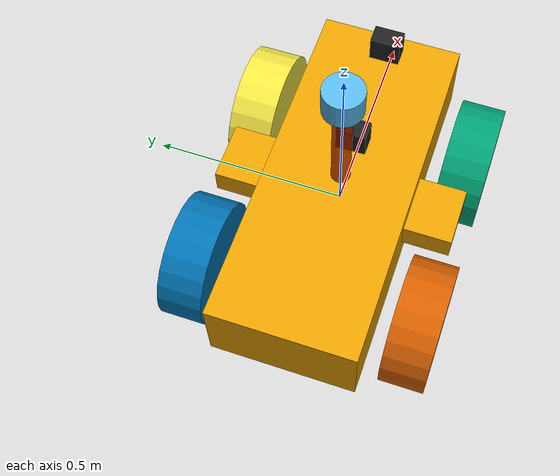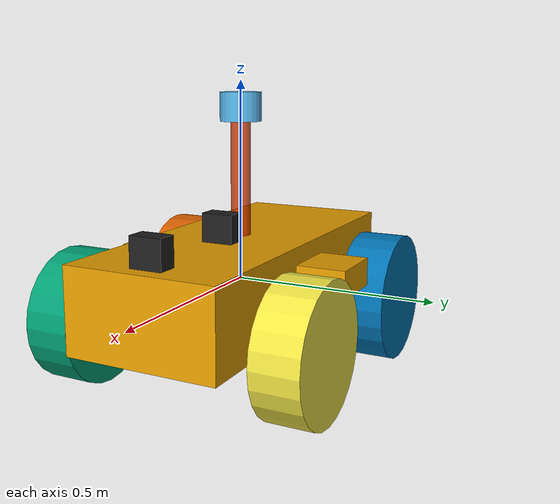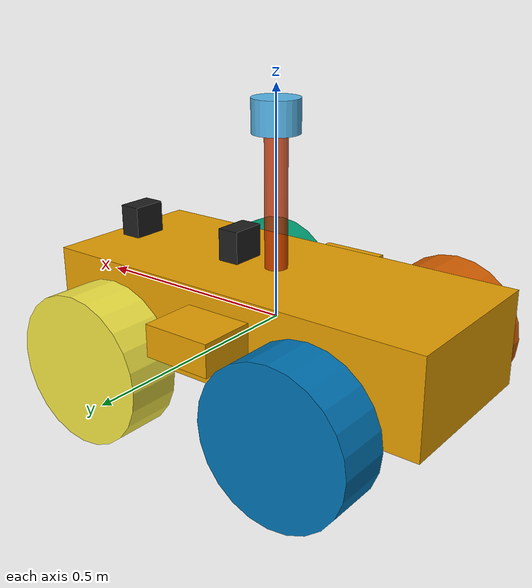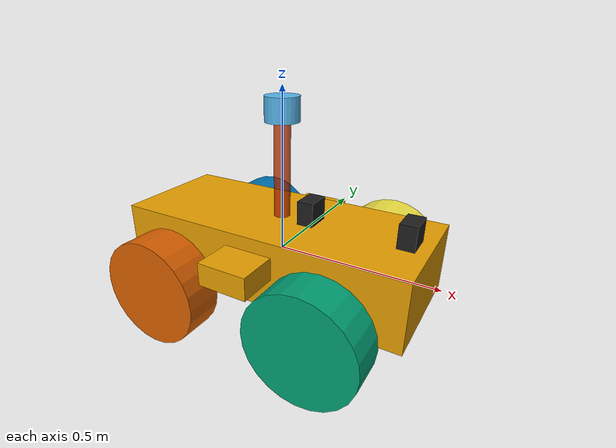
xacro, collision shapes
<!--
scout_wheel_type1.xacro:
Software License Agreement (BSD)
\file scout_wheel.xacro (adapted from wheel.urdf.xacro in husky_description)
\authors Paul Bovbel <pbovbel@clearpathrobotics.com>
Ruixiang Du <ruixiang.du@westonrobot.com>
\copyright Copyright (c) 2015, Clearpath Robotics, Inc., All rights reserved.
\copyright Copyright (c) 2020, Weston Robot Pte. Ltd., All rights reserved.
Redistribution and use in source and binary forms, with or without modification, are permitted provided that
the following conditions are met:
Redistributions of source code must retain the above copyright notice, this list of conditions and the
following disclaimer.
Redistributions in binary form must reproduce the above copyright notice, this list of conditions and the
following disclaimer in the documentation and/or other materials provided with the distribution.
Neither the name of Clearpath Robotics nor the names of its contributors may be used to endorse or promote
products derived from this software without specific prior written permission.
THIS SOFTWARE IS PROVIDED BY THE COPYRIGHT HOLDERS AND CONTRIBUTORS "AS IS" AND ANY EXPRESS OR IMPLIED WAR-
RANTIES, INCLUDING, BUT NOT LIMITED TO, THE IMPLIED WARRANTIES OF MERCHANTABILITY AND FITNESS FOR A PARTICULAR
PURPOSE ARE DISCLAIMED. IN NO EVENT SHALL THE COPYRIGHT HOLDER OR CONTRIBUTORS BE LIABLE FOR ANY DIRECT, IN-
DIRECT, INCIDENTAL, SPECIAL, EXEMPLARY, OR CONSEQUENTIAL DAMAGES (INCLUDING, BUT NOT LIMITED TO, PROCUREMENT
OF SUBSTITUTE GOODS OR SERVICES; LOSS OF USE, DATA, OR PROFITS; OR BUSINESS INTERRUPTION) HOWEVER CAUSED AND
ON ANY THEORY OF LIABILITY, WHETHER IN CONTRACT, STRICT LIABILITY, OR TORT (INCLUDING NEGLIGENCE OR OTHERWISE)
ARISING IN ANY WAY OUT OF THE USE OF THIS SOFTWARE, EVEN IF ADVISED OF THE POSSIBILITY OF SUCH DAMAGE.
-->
<?xml version="1.0"?>
<robot xmlns:xacro="http://www.ros.org/wiki/xacro" name="example">
  <xacro:arg name="gpu" default="false"/>
  <xacro:property name="gpu" value="$(arg gpu)" />
  <xacro:arg name="organize_cloud" default="false"/>
  <xacro:property name="organize_cloud" value="$(arg organize_cloud)" />

	<!-- include -->
	<xacro:include filename="$(find scout_description)/urdf/inertial.xacro" /><!--惯性矩阵计算模块-->
	<xacro:include filename="$(find scout_description)/urdf/scout_v2.xacro" /><!--底盘模块-->
	<xacro:include filename="$(find scout_description)/urdf/camera.xacro" /><!--相机模块-->
  <xacro:include filename="$(find scout_description)/urdf/VLP-16.urdf.xacro"/><!--16线激光雷达模块-->
  <xacro:include filename="$(find scout_description)/urdf/IMU.xacro" /><!--imu模块-->
  <xacro:VLP-16 out_parent="base_link" laser_name="velodyne" topic="/velodyne_points" organize_cloud="${organize_cloud}" hz="10" samples="440" gpu="${gpu}">
    <origin xyz="0 0 0.4" rpy="0 0 0" />
  </xacro:VLP-16>
</robot>

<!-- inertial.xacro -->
<robot name="base" xmlns:xacro="http://wiki.ros.org/xacro">
    <!-- Macro for inertia matrix -->
    <xacro:macro name="sphere_inertial_matrix" params="m r">
        <inertial>
            <mass value="${m}" />
            <inertia ixx="${2*m*r*r/5}" ixy="0" ixz="0"
                iyy="${2*m*r*r/5}" iyz="0"
                izz="${2*m*r*r/5}" />
        </inertial>
    </xacro:macro>

    <xacro:macro name="cylinder_inertial_matrix" params="m r h">
        <inertial>
            <mass value="${m}" />
            <inertia ixx="${m*(3*r*r+h*h)/12}" ixy = "0" ixz = "0"
                iyy="${m*(3*r*r+h*h)/12}" iyz = "0"
                izz="${m*r*r/2}" />
        </inertial>
    </xacro:macro>

    <xacro:macro name="Box_inertial_matrix" params="m l w h">
       <inertial>
               <mass value="${m}" />
               <inertia ixx="${m*(h*h + l*l)/12}" ixy = "0" ixz = "0"
                   iyy="${m*(w*w + l*l)/12}" iyz= "0"
                   izz="${m*(w*w + h*h)/12}" />
       </inertial>
   </xacro:macro>
</robot>

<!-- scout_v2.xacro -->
<robot name="scout_v2"
    xmlns:xacro="http://ros.org/wiki/xacro">

    <xacro:arg name="robot_namespace" default="/" />
    <xacro:arg name="urdf_extras" default="empty.urdf" />

        <!-- Variables -->
    <xacro:property name="M_PI" value="3.14159"/>

    <!-- Vehicle Geometries -->
    <xacro:property name="base_x_size" value="0.9250000" />
    <xacro:property name="base_y_size" value="0.380000" />
    <xacro:property name="base_z_size" value="0.210000" />
    <xacro:property name="wheelbase" value="0.498" />
    <xacro:property name="track" value="0.58306" />
    <xacro:property name="wheel_vertical_offset" value="-0.0702" />
    <xacro:property name="wheel_length" value="1.1653e-01" />
    <xacro:property name="wheel_radius" value="1.6459e-01" />
    <xacro:property name="mass" value="5000" />

     <!-- include -->
    <xacro:include filename="$(find scout_description)/urdf/scout_wheel_type1.xacro" />
    <xacro:include filename="$(find scout_description)/urdf/scout_wheel_type2.xacro" />

    <!-- Base link -->
    <link name="base_link">
        <visual>
            <origin xyz="0 0 0" rpy="0 0 0" />
            <geometry>
                <mesh filename="package://scout_description/meshes/base_link.dae" />
            </geometry>
        </visual>
        <collision>
            <origin xyz="0 0 0.008" rpy="0 0 0" />
            <geometry>
                <box size="${base_x_size} ${base_y_size} ${base_z_size}"/>
            </geometry>
        </collision>
        <collision>
            <origin xyz="0 0 ${base_z_size/6}" rpy="0 0 0" />
            <geometry>
                <box size="${base_x_size/6} ${base_y_size*1.65} ${base_z_size/3}"/>
            </geometry>
        </collision>
    </link>

    <link name="inertial_link">
        <inertial>
            <mass value="${mass}" />
            <origin xyz="0.0 0.0 0.0" />
            <inertia ixx="${mass*(base_z_size*base_z_size + base_x_size*base_x_size)/12}" ixy = "0" ixz = "0"
                   iyy="${mass*(base_y_size*base_y_size + base_x_size*base_x_size)/12}" iyz= "0"
                   izz="${mass*(base_y_size*base_y_size + base_z_size*base_z_size)/12}" />
        </inertial>
    </link>

    <joint name="inertial_joint" type="fixed">
        <origin xyz="0 0 0" rpy="0 0 0" />
        <parent link="base_link" />
        <child link="inertial_link" />
    </joint>

    <!-- For testing, hang the robot up in the air -->

    <!-- Scout wheel macros -->
    <!-- wheel labeled from 0 to 3, conter-clockwise, starting from front right wheel -->
    <!-- motor 1 and 2 (left side) are mechanically installed in a reversed direction -->
    <xacro:scout_wheel_type1 wheel_prefix="front_right">
        <origin xyz="${wheelbase/2} ${-track/2} ${wheel_vertical_offset}" rpy="3.14 0 0" />
    </xacro:scout_wheel_type1>
    <xacro:scout_wheel_type2 wheel_prefix="front_left">
        <origin xyz="${wheelbase/2} ${track/2} ${wheel_vertical_offset}" rpy="0 0 0" />
    </xacro:scout_wheel_type2>
    <xacro:scout_wheel_type1 wheel_prefix="rear_left">
        <origin xyz="${-wheelbase/2} ${track/2} ${wheel_vertical_offset}" rpy="0 0 0" />
    </xacro:scout_wheel_type1>
    <xacro:scout_wheel_type2 wheel_prefix="rear_right">
        <origin xyz="${-wheelbase/2} ${-track/2} ${wheel_vertical_offset}" rpy="3.14 0 0" />
    </xacro:scout_wheel_type2>

    <!-- Additional definitions -->
    <xacro:include filename="$(arg urdf_extras)" />

    <!-- Gazebo definitions  -->
    <xacro:include filename="$(find scout_description)/urdf/scout_v2.gazebo" />

</robot>

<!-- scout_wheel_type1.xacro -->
<robot xmlns:xacro="http://ros.org/wiki/xacro" name="scout_wheel">

    <xacro:macro name="scout_wheel_type1" params="wheel_prefix *joint_pose">
        <link name="${wheel_prefix}_wheel_link">
            <inertial>
                <mass value="8" />
                <origin xyz="0 0 0" />
                <inertia ixx="0.1171" ixy="0" ixz="0" iyy="0.1361" iyz="0" izz="0.1171" />
            </inertial>
            <visual>
                <origin xyz="0 0 0" rpy="0 0 0" />
                <geometry>
                    <mesh filename="file://$(find scout_description)/meshes/wheel_type1.dae" />
                </geometry>
            </visual>
            <collision>
                <origin xyz="0 0 0" rpy="${M_PI/2} 0 0" />
                <geometry>
                    <cylinder length="${wheel_length}" radius="${wheel_radius}" />
                </geometry>
                     <contact>
                         <ode>
                        <min_depth>0.001</min_depth>
                         </ode>
                    </contact>
            </collision>
        </link>

        <joint name="${wheel_prefix}_wheel" type="continuous">
            <parent link="base_link"/>
            <child link="${wheel_prefix}_wheel_link"/>
            <xacro:insert_block name="joint_pose"/>
            <axis xyz="0 -1 0" rpy="0 0 0" />
            <dynamics damping="0.0" friction="20"/>
        </joint>
    </xacro:macro>

</robot>

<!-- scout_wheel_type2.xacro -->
<robot xmlns:xacro="http://ros.org/wiki/xacro" name="scout_wheel">

    <xacro:macro name="scout_wheel_type2" params="wheel_prefix *joint_pose">
        <link name="${wheel_prefix}_wheel_link">
            <inertial>
                <mass value="8" />
                <origin xyz="0 0 0" />
                <inertia ixx="0.1171" ixy="0" ixz="0" iyy="0.1361" iyz="0" izz="0.1171" />
            </inertial>
            <visual>
                <origin xyz="0 0 0" rpy="0 0 0" />
                <geometry>
                    <mesh filename="package://scout_description/meshes/wheel_type1.dae" />
                </geometry>
            </visual>
            <collision>
                <origin xyz="0 0 0" rpy="${M_PI/2} 0 0" />
                <geometry>
                    <cylinder length="${wheel_length}" radius="${wheel_radius}" />
                </geometry>
                     <contact>
                         <ode>
                        <min_depth>0.001</min_depth>
                         </ode>
                    </contact>
            </collision>
        </link>

        <joint name="${wheel_prefix}_wheel" type="continuous">
            <parent link="base_link"/>
            <child link="${wheel_prefix}_wheel_link"/>
            <xacro:insert_block name="joint_pose"/>
            <axis xyz="0 -1 0" rpy="0 0 0" />
        </joint>
    </xacro:macro>

</robot>

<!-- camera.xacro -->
<!-- 摄像头相关的 xacro 文件 -->
<robot name="my_camera" xmlns:xacro="http://wiki.ros.org/xacro">
    <!-- 摄像头属性 -->
    <xacro:property name="camera_length" value="0.05" /> <!-- 摄像头长度(x) -->
    <xacro:property name="camera_width" value="0.08" /> <!-- 摄像头宽度(y) -->
    <xacro:property name="camera_height" value="0.08" /> <!-- 摄像头高度(z) -->
    <xacro:property name="camera_x" value="0.4" /> <!-- 摄像头安装的x坐标 -->
    <xacro:property name="camera_y" value="0.0" /> <!-- 摄像头安装的y坐标 -->
    <xacro:property name="camera_z" value="${base_z_size / 2 + camera_height / 2}" /> <!-- 摄像头安装的z坐标:底盘高度 / 2 + 摄像头高度 / 2  -->
    <xacro:property name="camera_m" value="0.01" /> <!-- 摄像头质量 -->

    <!-- 摄像头关节以及link -->
    <link name="camera">
        <visual>
            <geometry>
                <box size="${camera_length} ${camera_width} ${camera_height}" />
            </geometry>
            <origin xyz="0.0 0.0 0.0" rpy="0.0 0.0 0.0" />
            <material name="black" />
        </visual>
        <collision>
            <geometry>
                <box size="${camera_length} ${camera_width} ${camera_height}" />
            </geometry>
            <origin xyz="0.0 0.0 0.0" rpy="0.0 0.0 0.0" />
        </collision>
        <xacro:Box_inertial_matrix m="${camera_m}" l="${camera_length}" w="${camera_width}" h="${camera_height}" />
    </link>

    <joint name="camera2base_link" type="fixed">
        <parent link="base_link" />
        <child link="camera" />
        <origin xyz="${camera_x} ${camera_y} ${camera_z}" />
    </joint>

    <gazebo reference="camera">
        <material>Gazebo/Black</material>
    </gazebo>

	<!-- gazebo相机插件配置 -->
    <gazebo reference="camera">
        <sensor type="camera" name="camera_node">
            <update_rate>30.0</update_rate> <!-- 更新频率 -->
            <camera name="head"><!-- 摄像头基本信息设置 -->
                <horizontal_fov>1.3962634</horizontal_fov>
                <image>
                    <width>1280</width>
                    <height>720</height>
                    <format>R8G8B8</format>
                </image>
                <clip>
                    <near>0.02</near>
                    <far>300</far>
                </clip>
                <noise>
                    <type>gaussian</type>
                    <mean>0.0</mean>
                    <stddev>0.007</stddev>
                </noise>
            </camera>
            <!-- 核心插件 -->
            <plugin name="gazebo_camera" filename="libgazebo_ros_camera.so">
                <alwaysOn>true</alwaysOn>
                <updateRate>0.0</updateRate>
                <cameraName>/camera</cameraName>
                <imageTopicName>image_raw</imageTopicName>
                <cameraInfoTopicName>camera_info</cameraInfoTopicName>
                <frameName>camera</frameName>
                <hackBaseline>0.07</hackBaseline>
                <distortionK1>0.0</distortionK1>
                <distortionK2>0.0</distortionK2>
                <distortionK3>0.0</distortionK3>
                <distortionT1>0.0</distortionT1>
                <distortionT2>0.0</distortionT2>
            </plugin>
        </sensor>
    </gazebo>
</robot>

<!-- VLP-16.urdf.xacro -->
<robot xmlns:xacro="http://www.ros.org/wiki/xacro" name="VLP-16">
  <xacro:property name="M_PI" value="3.1415926535897931" />
  <xacro:macro name="VLP-16" params="*origin
    out_parent:=base_link
    laser_name:=velodyne
    topic:=/velodyne_points
    organize_cloud:=false
    hz:=10
    lasers:=16
    samples:=1875
    collision_range:=0.3
    min_range:=0.9
    max_range:=130.0
    noise:=0.008
    min_angle:=-${M_PI}
    max_angle:=${M_PI}
    gpu:=false">

    <!-- 雷达、支架属性 -->
    <xacro:property name="support_length" value="0.30" /> <!-- 支架长度 -->
    <xacro:property name="support_radius" value="0.025" /> <!-- 支架半径 -->
    <xacro:property name="support_x_size" value="0.0" /> <!-- 支架安装的x坐标 -->
    <xacro:property name="support_y_size" value="0.0" /> <!-- 支架安装的y坐标 -->
    <xacro:property name="support_z_size" value="0.255" /> <!-- 支架安装的z坐标:底盘高度 / 2 + 支架高度 / 2  -->
    <xacro:property name="support_m" value="0.02" /> <!-- 支架质量 -->

    <xacro:property name="laser_length" value="0.0717" /> <!-- laser长度 -->
    <xacro:property name="laser_radius" value="0.0516" /> <!-- laser半径 -->
    <xacro:property name="laser_z_size" value="0.255" /> <!-- 支架安装的z坐标:底盘高度 / 2 + 支架高度 / 2  -->
    <xacro:property name="laser_m" value="0.83" /> <!-- laser质量 -->

    <!-- 雷达支架 -->
    <link name="support">
        <visual>
            <geometry>
                <cylinder radius="${support_radius}" length="${support_length}" />
            </geometry>
            <origin xyz="0.0 0.0 0.0" rpy="0.0 0.0 0.0" />
            <material name="red">
                <color rgba="0.8 0.2 0.0 0.8" />
            </material>
        </visual>
        <collision>
            <geometry>
                <cylinder radius="${support_radius}" length="${support_length}" />
            </geometry>
            <origin xyz="0.0 0.0 0.0" rpy="0.0 0.0 0.0" />
        </collision>
        <xacro:cylinder_inertial_matrix m="${support_m}" r="${support_radius}" h="${support_length}" />
    </link>

    <joint name="support2base_link" type="fixed">
        <parent link="${out_parent}" />
        <child link="support" />
        <origin xyz="${support_x_size} ${support_y_size} ${support_z_size}" />
    </joint>

    <gazebo reference="support">
        <material>Gazebo/White</material>
    </gazebo>

  <!-- 雷达关节以及link -->
    <joint name="${laser_name}_base_mount_joint" type="fixed">
        <xacro:insert_block name="origin" />
        <parent link="${out_parent}"/>
        <child link="${laser_name}_base_link"/>
    </joint>

    <link name="${laser_name}_base_link">
        <inertial>
            <mass value="0.83"/>
            <origin xyz="0 0 0.03585"/>
            <inertia ixx="${(0.83 * (3.0*0.0516*0.0516 + 0.0717*0.0717)) / 12.0}" ixy="0" ixz="0"
                    iyy="${(0.83 * (3.0*0.0516*0.0516 + 0.0717*0.0717)) / 12.0}" iyz="0"
                    izz="${0.5 * 0.83 * (0.0516*0.0516)}"/>
        </inertial>
      <visual>
        <geometry>
            <mesh filename="package://scout_description/meshes/VLP16_base_1.dae" />
        </geometry>
      </visual>
      <visual>
        <geometry>
            <mesh filename="package://scout_description/meshes/VLP16_base_2.dae" />
        </geometry>
      </visual>
      <collision>
        <origin rpy="0 0 0" xyz="0 0 0.03585"/>
        <geometry>
            <cylinder radius="0.0516" length="0.0717"/>
        </geometry>
      </collision>
    </link>

    <joint name="${laser_name}_base_scan_joint" type="fixed" >
        <origin xyz="0 0 0.0377" rpy="0 0 0" />
        <parent link="${laser_name}_base_link" />
        <child link="${laser_name}"/>
    </joint>

    <link name="${laser_name}">
        <inertial>
            <mass value="0.01"/>
            <origin xyz="0 0 0"/>
            <inertia ixx="1e-7" ixy="0" ixz="0" iyy="1e-7" iyz="0" izz="1e-7"/>
        </inertial>
        <visual>
            <origin xyz="0 0 -0.0377" />
            <geometry>
                <mesh filename="package://scout_description/meshes/VLP16_scan.dae" />
            </geometry>
        </visual>
    </link>

    <!-- Gazebo requires the velodyne_gazebo_plugins package -->
    <gazebo reference="${laser_name}">
        <xacro:if value="${gpu}">
            <sensor type="gpu_ray" name="${laser_name}-VLP16">
            <pose>0 0 0 0 0 0</pose>
            <visualize>false</visualize>
            <update_rate>${hz}</update_rate>
                <ray>
                    <scan>
                    <horizontal>
                        <samples>${samples}</samples>
                        <resolution>1</resolution>
                        <min_angle>${min_angle}</min_angle>
                        <max_angle>${max_angle}</max_angle>
                    </horizontal>
                    <vertical>
                        <samples>${lasers}</samples>
                        <resolution>1</resolution>
                        <min_angle>-${15.0*M_PI/180.0}</min_angle>
                        <max_angle> ${15.0*M_PI/180.0}</max_angle>
                    </vertical>
                    </scan>
                    <range>
                    <min>${collision_range}</min>
                    <max>${max_range+1}</max>
                    <resolution>0.001</resolution>
                    </range>
                    <noise>
                    <type>gaussian</type>
                    <mean>0.0</mean>
                    <stddev>0.0</stddev>
                    </noise>
                </ray>
                <plugin name="gazebo_ros_laser_controller" filename="libgazebo_ros_velodyne_gpu_laser.so">
                    <topicName>${topic}</topicName>
                    <frameName>${laser_name}</frameName>
                    <organize_cloud>${organize_cloud}</organize_cloud>
                    <min_range>${min_range}</min_range>
                    <max_range>${max_range}</max_range>
                    <gaussianNoise>${noise}</gaussianNoise>
                </plugin>
            </sensor>
        </xacro:if>
      <xacro:unless value="${gpu}">
        <sensor type="ray" name="${laser_name}-VLP16">
            <pose>0 0 0 0 0 0</pose>
            <visualize>false</visualize>
            <update_rate>${hz}</update_rate>
            <ray>
                <scan>
                    <horizontal>
                        <samples>${samples}</samples>
                        <resolution>1</resolution>
                        <min_angle>${min_angle}</min_angle>
                        <max_angle>${max_angle}</max_angle>
                    </horizontal>
                    <vertical>
                        <samples>${lasers}</samples>
                        <resolution>1</resolution>
                        <min_angle>-${15.0*M_PI/180.0}</min_angle>
                        <max_angle> ${15.0*M_PI/180.0}</max_angle>
                    </vertical>
                </scan>
                <range>
                    <min>${collision_range}</min>
                    <max>${max_range+1}</max>
                    <resolution>0.001</resolution>
                </range>
                <noise>
                    <type>gaussian</type>
                    <mean>0.0</mean>
                    <stddev>0.0</stddev>
                </noise>
            </ray>
            <plugin name="gazebo_ros_laser_controller" filename="libgazebo_ros_velodyne_laser.so">
                <topicName>${topic}</topicName>
                <frameName>${laser_name}</frameName>
                <organize_cloud>${organize_cloud}</organize_cloud>
                <min_range>${min_range}</min_range>
                <max_range>${max_range}</max_range>
                <gaussianNoise>${noise}</gaussianNoise>
            </plugin>
        </sensor>
      </xacro:unless>
    </gazebo>

  </xacro:macro>
</robot>

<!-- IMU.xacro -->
<!-- 摄像头相关的 xacro 文件 -->
<robot name="my_imu" xmlns:xacro="http://wiki.ros.org/xacro">
    <!-- imu属性 -->
    <xacro:property name="imu_length" value="0.05" /> <!--imu长度(x) -->
    <xacro:property name="imu_width" value="0.08" /> <!-- imu宽度(y) -->
    <xacro:property name="imu_height" value="0.08" /> <!--imu高度(z) -->
    <xacro:property name="imu_x" value="0.1" /> <!-- imu安装的x坐标 -->
    <xacro:property name="imu_y" value="0.0" /> <!-- imu安装的y坐标 -->
    <xacro:property name="imu_z" value="${base_z_size / 2 + imu_height / 2}" /> <!-- imu安装的z坐标:底盘高度 / 2 + imu高度 / 2  -->
    <xacro:property name="imu_m" value="0.01" /> <!--imu质量 -->

    <!-- imu关节以及link -->
    <link name="imu">
        <visual>
            <geometry>
                <box size="${imu_length} ${imu_width} ${imu_height}" />
            </geometry>
            <origin xyz="0.0 0.0 0.0" rpy="0.0 0.0 0.0" />
            <material name="black" />
        </visual>
        <collision>
            <geometry>
                <box size="${imu_length} ${imu_width} ${imu_height}" />
            </geometry>
            <origin xyz="0.0 0.0 0.0" rpy="0.0 0.0 0.0" />
        </collision>
        <xacro:Box_inertial_matrix m="${imu_m}" l="${imu_length}" w="${imu_width}" h="${imu_height}" />
    </link>

    <joint name="imu2base_link" type="fixed">
        <parent link="base_link" />
        <child link="imu" />
        <origin xyz="${imu_x} ${imu_y} ${imu_z}" />
    </joint>

    <gazebo reference="imu"><!--gazebo中颜色显示 -->
        <material>Gazebo/Black</material>
    </gazebo>

	<!-- gazebo imu插件配置 -->
    <gazebo reference="imu">
        <gravity>true</gravity>
            <sensor name="imu_sensor" type="imu">
            <always_on>true</always_on>
            <update_rate>100</update_rate>
            <visualize>true</visualize>
            <topic>__default_topic__</topic>
            <plugin filename="libgazebo_ros_imu_sensor.so" name="imu_plugin">
                <topicName>/zed2/zed_node/imu/data</topicName>
                <bodyName>imu</bodyName>
                <updateRateHZ>100.0</updateRateHZ>
                <gaussianNoise>0.0</gaussianNoise>
                <xyzOffset>0 0 0</xyzOffset>
                <rpyOffset>0 0 0</rpyOffset>
                <frameName>imu_link</frameName>
            </plugin>
            <pose>0 0 0 0 0 0</pose>
            </sensor>
    </gazebo>
</robot>
